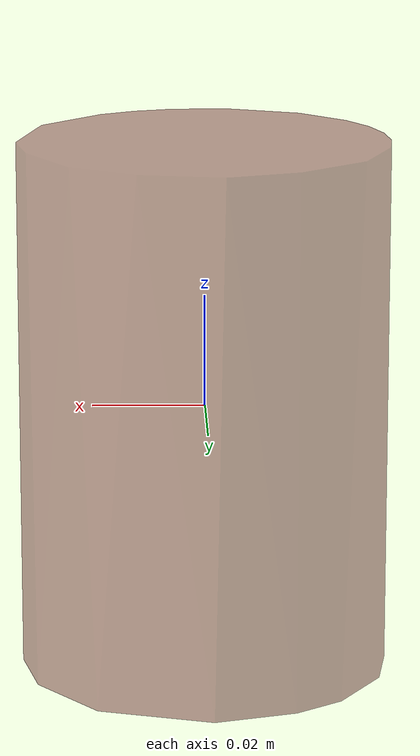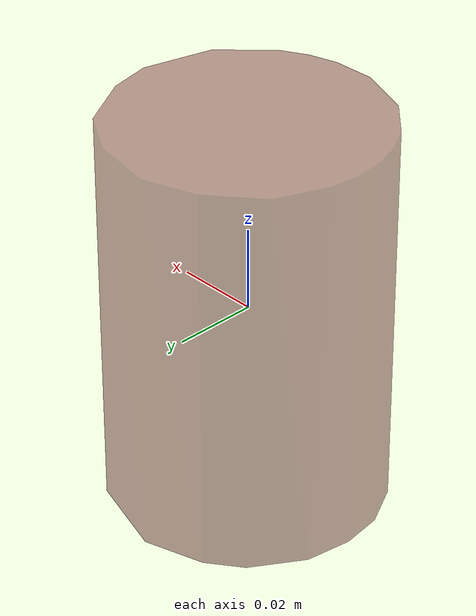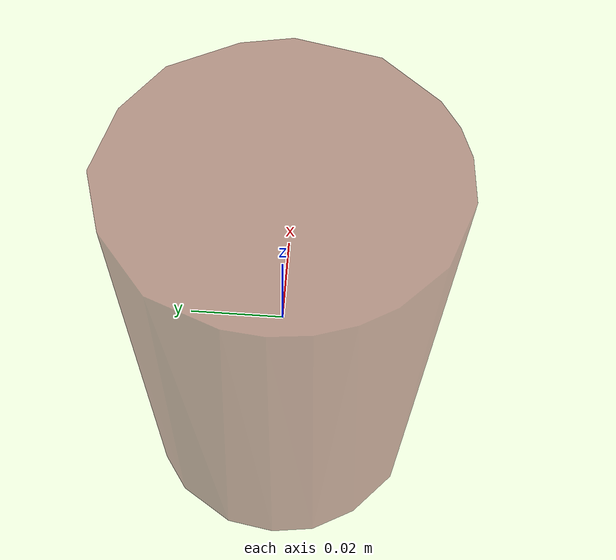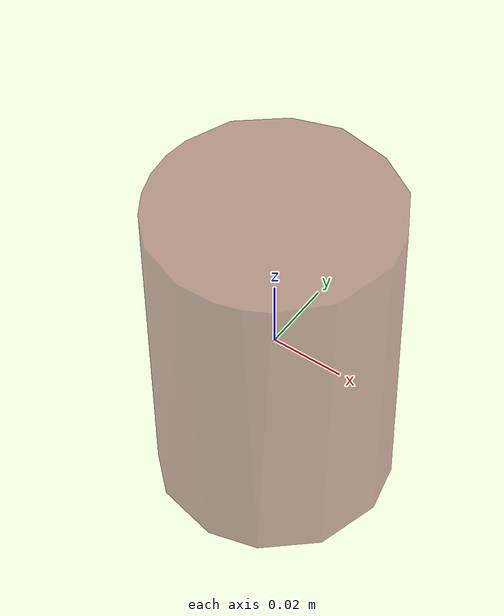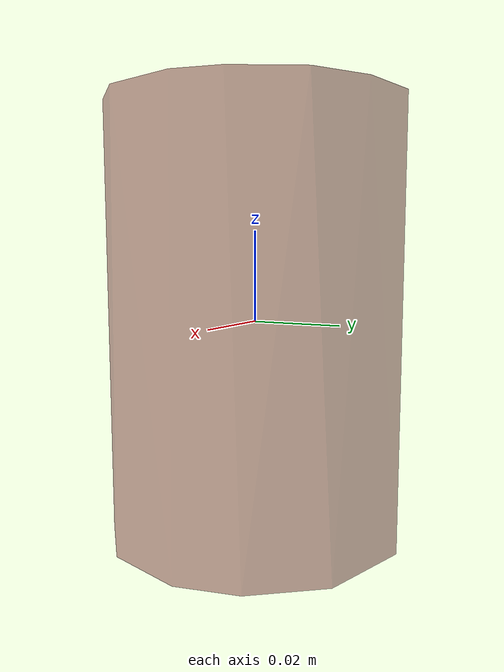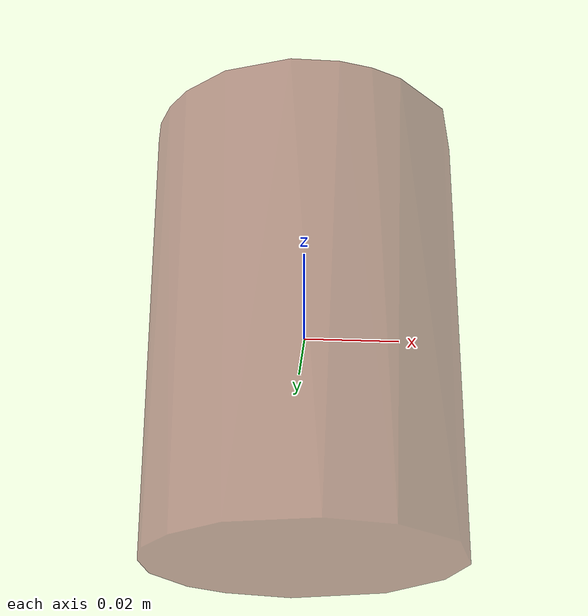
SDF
<?xml version='1.0'?>
<sdf version="1.7" xmlns:drake='drake.mit.edu'>
    <model name='cylinder'>
        <link name='cylinder'>
            <inertial>
                <!-- Assume a density of 350 kg/m^3 -->
                <pose>0 0 0 0 0 0</pose>
                <mass>0.10949418</mass>
                <inertia>
                    <ixx>1.11030815e-04</ixx>
                    <ixy>6.78382269e-11</ixy>
                    <ixz>7.23783036e-23</ixz>
                    <iyy>1.11054035e-04</iyy>
                    <iyz>0.000000</iyz>
                    <izz>5.73873560e-05</izz>
                </inertia>
            </inertial>
            <visual name='cylinder'>
                <pose>0 0 0 0 0 0</pose>
                <geometry>
                    <mesh>
                        <uri>cylinder.obj</uri>
                        <scale>1.0 1.0 1.0</scale>
                        <drake:declare_convex/>
                    </mesh>
                </geometry>
                <material>
                    <diffuse>0.5 0.2 0.2 0.5</diffuse>
                </material>
            </visual>
            <collision name='cylinder_collision'>
                <pose>0 0 0 0 0 0</pose>
                <geometry>
                    <mesh>
                        <uri>cylinder_collision_medium.obj</uri>
                        <scale>1.0 1.0 1.0</scale>
                        <drake:declare_convex/>
                    </mesh>
                </geometry>
                <!-- Duplicates the proximity properties of //models/food_prep/extra_firm_tofu_block.sdf. -->
                <drake:proximity_properties>
                    <drake:mu_dynamic>0.1</drake:mu_dynamic>
                    <drake:mu_static>0.1</drake:mu_static>
                    <drake:rigid_hydroelastic/>
                </drake:proximity_properties>
            </collision>
        </link>
    </model>
</sdf>
